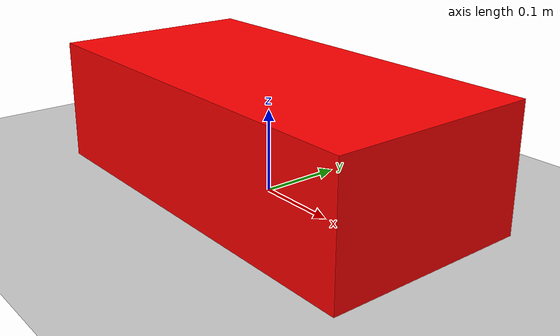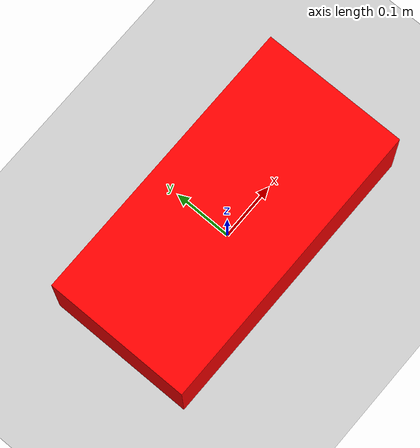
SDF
<?xml version="1.0"?>
<sdf version="1.4">
  <world name="default">

    <!-- Ground Plane -->
    <include>
      <uri>model://ground_plane</uri>
    </include>

    <include>
      <uri>model://sun</uri>
    </include>

    <model name="box">

      <pose>0 0 0.075 0 0 0</pose>
      <link name="link">
        <collision name="collision">
          <geometry>
            <box>
              <size>0.5 0.25 0.15</size>
            </box>
          </geometry>
        </collision>

        <visual name="visual">
          <geometry>
            <box>
              <size>0.5 0.25 0.15</size>
            </box>
          </geometry>
          <material>
                <ambient>1 0 0 1</ambient>
                <diffuse>1 0 0 1</diffuse>
                <specular>1 1 1 1</specular>
                <emissive>0 0 0 1</emissive>
          </material>
        </visual>
      </link>

      <plugin name="gazebo_plugin" filename="libgazebo_plugin.so"/>
    </model>

  </world>
</sdf>
